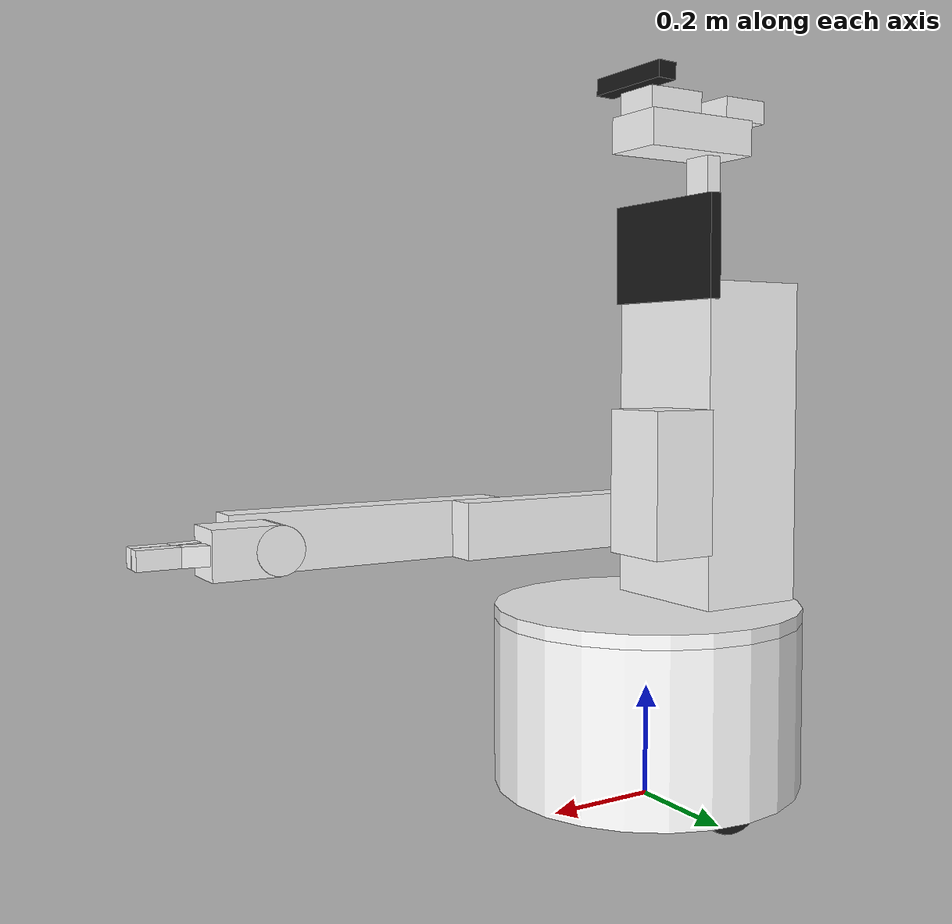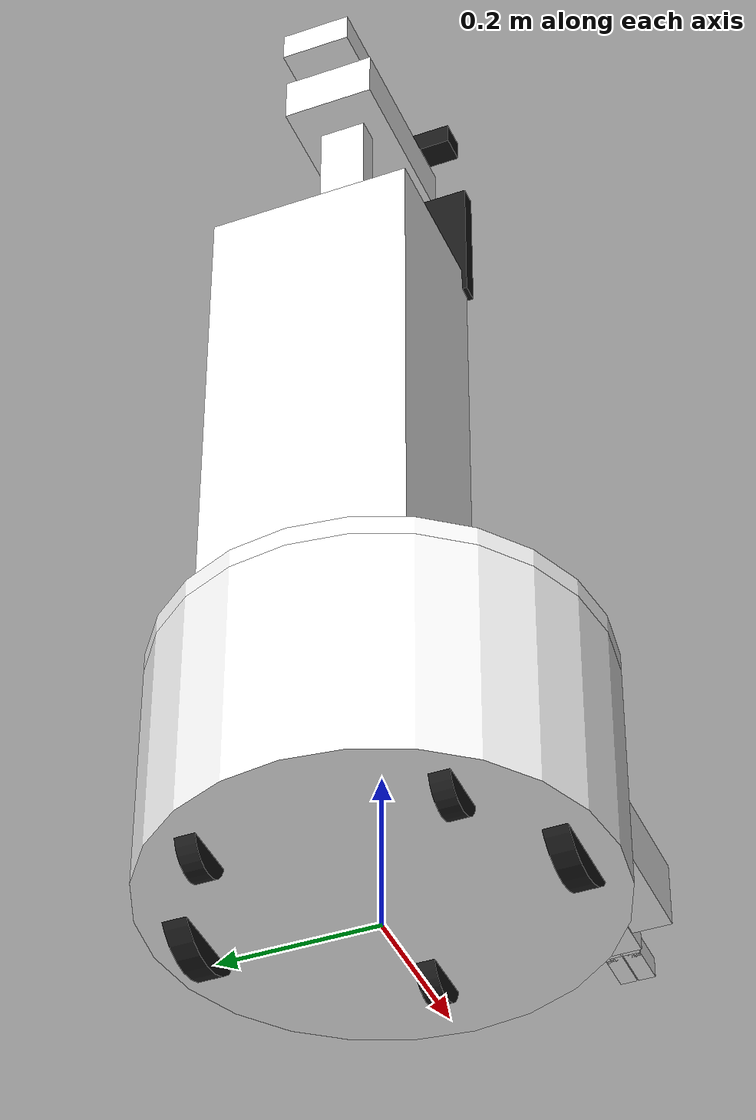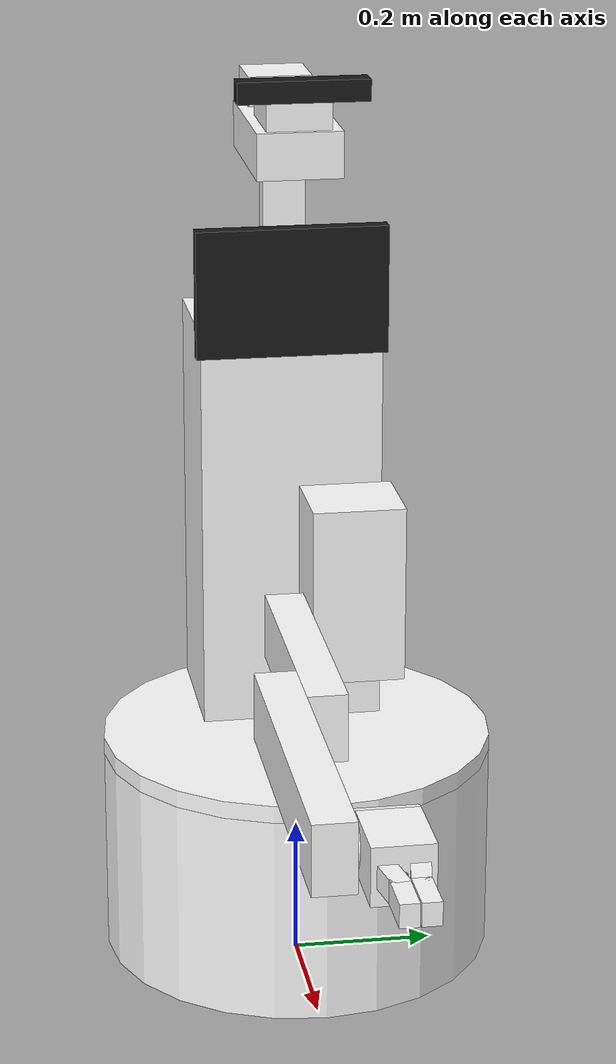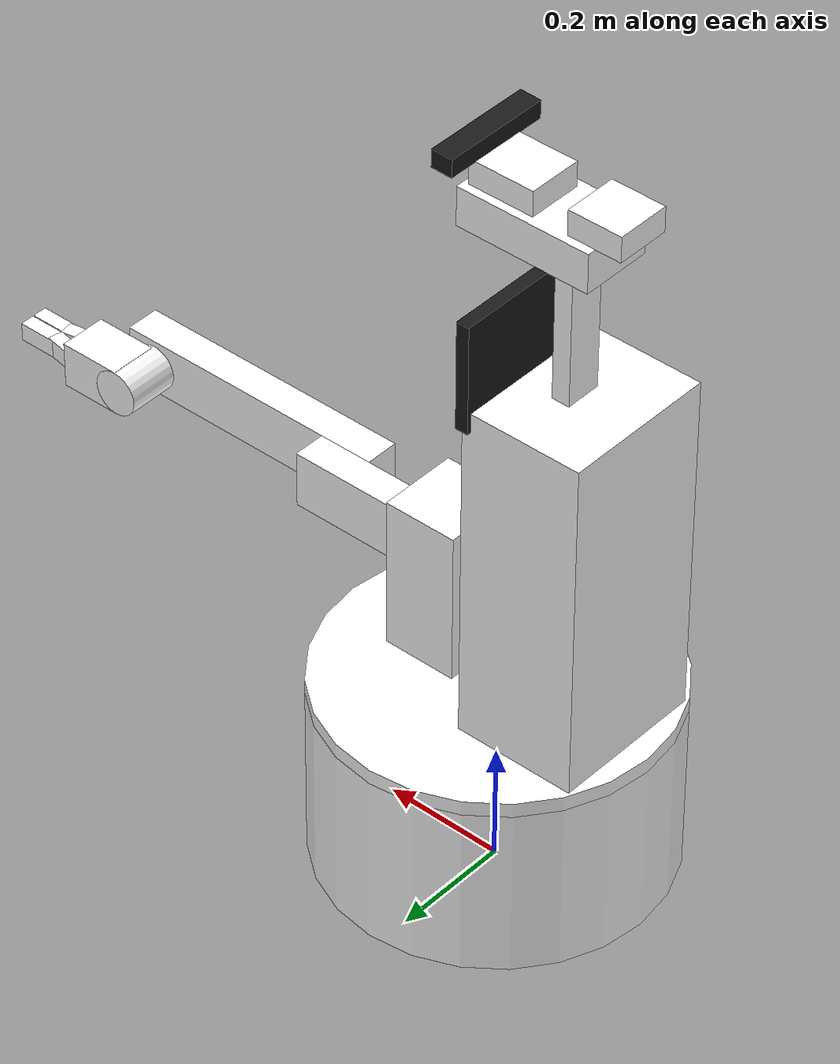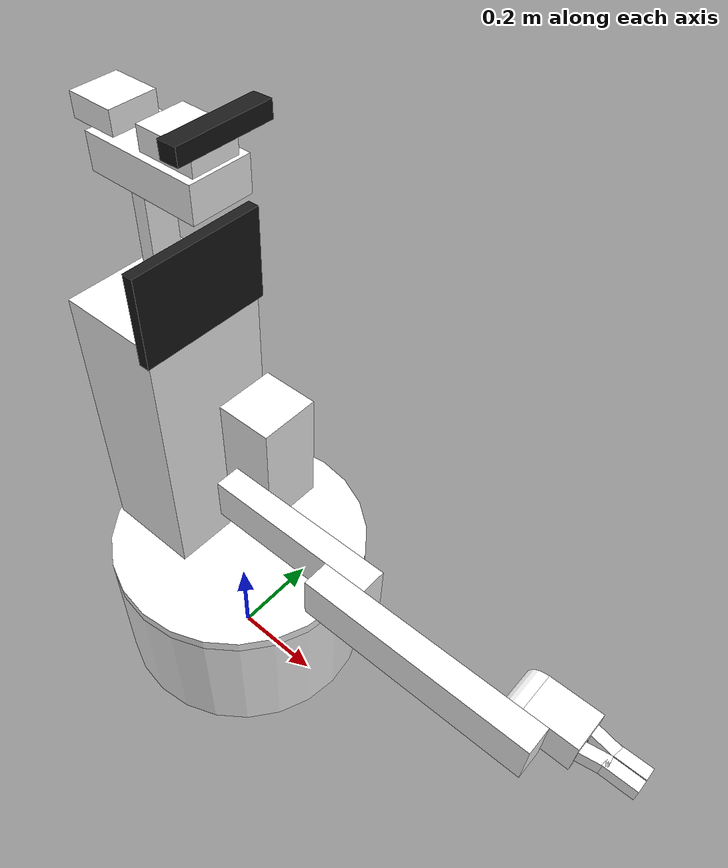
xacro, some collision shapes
<?xml version="1.0" ?>
<robot name="korus_v3" xmlns:xacro="http://www.ros.org/wiki/xacro">
  <xacro:include filename="$(find korus_meta)/resources/urdf/components/diff_drive_base.urdf.xacro"/>
  <xacro:include filename="$(find korus_meta)/resources/urdf/components/upper_body.urdf.xacro"/>
  <xacro:include filename="$(find korus_meta)/resources/urdf/components/arm.urdf.xacro"/>

  <!-- ************************ Base model ************************* -->
  <xacro:diff_drive_base parent="base_footprint" body_mount_link="base_link"/>

  <!-- ************************ Body model ************************* -->
  <xacro:upper_body body_mount_link="base_link" arm_mount_link="torso_lift_link"/>

  <!-- ************************ Arm model ************************* -->
  <xacro:arm arm_mount_link="torso_lift_link"/>
</robot>

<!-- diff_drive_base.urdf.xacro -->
<robot xmlns:xacro="http://www.ros.org/wiki/xacro">
  <xacro:include filename="$(find korus_meta)/resources/urdf/materials.urdf.xacro"/>
  <xacro:include filename="$(find korus_meta)/resources/urdf/hokuyo_lx30_laser.urdf.xacro"/>

  <!-- ************************** Properties ************************** -->
  <xacro:property name="wheel_bias" value="0.450"/>
  <xacro:property name="wheel_radius" value="0.075"/>
  <xacro:property name="caster_wheel_bias" value="0.294"/>
  <xacro:property name="caster_wheel_radius" value="0.0375"/>

  <!-- ************************** Wheel macros ************************** -->
	<xacro:macro name="drive_wheel" params="name parent length radius off_x off_y off_z">
    <joint name="${name}" type="continuous">
      <parent link="${parent}"/>
      <child link="${name}_link"/>
      <origin rpy="0 0 ${pi/2}" xyz="${off_x} ${off_y} ${off_z}"/>
      <limit effort="48.0" velocity="0.5"/>
    </joint>
	  <link name="${name}_link">
	    <visual>
	      <geometry>
	        <cylinder length="${length}" radius="${radius}"/>
	      </geometry>
	      <origin rpy="0 ${pi/2} 0" xyz="0 0 0"/>
	      <material name="black">
	        <color rgba="0.1 0.1 0.1 1"/>
	      </material>
	    </visual>
	  </link>
	</xacro:macro>
	<xacro:macro name="caster_wheel" params="name parent length radius off_x off_y off_z">
    <joint name="${name}_joint" type="fixed">
      <parent link="${parent}"/>
      <child link="${name}_link"/>
      <origin rpy="0 0 ${pi/2}" xyz="${off_x} ${off_y} ${off_z}"/>
    </joint>
    <link name="${name}_link">
      <visual>
        <geometry>
          <cylinder length="${length}" radius="${radius}"/>
        </geometry>
        <origin rpy="0 ${pi/2} 0" xyz="0 0 0"/>
        <material name="black">
          <color rgba="0.1 0.1 0.1 1"/>
        </material>
      </visual>
    </link>
  </xacro:macro>

  <!-- ************************** Differential drive base macro ************************** -->
  <xacro:macro name="diff_drive_base" params="parent body_mount_link">
    <link name="${parent}"/>
		<joint name="base_joint" type="fixed">
		  <parent link="${parent}"/>
		  <child link="${body_mount_link}"/>
		  <origin rpy="0 0 0" xyz="0.0 0.0 0.075"/>
		</joint>
		<link name="${body_mount_link}">
		  <visual>
		    <geometry>
		      <cylinder length="0.299" radius="0.278"/>
		    </geometry>
		    <origin xyz="0.0 0.0 0.1045" rpy="0 0 0"/>
		    <xacro:insert_block name="material_white"/>
		  </visual>
		  <collision>
	      <geometry>
	        <cylinder length="0.299" radius="0.278"/>
	      </geometry>
	      <origin xyz="0.0 0.0 0.1045" rpy="0 0 0"/>
		  </collision>
		</link>
		<xacro:drive_wheel name="wheel_left" parent="${body_mount_link}" length="0.03" radius="${wheel_radius}" off_x="0.0" off_y="${wheel_bias/2}" off_z="0.0"/>
		<xacro:drive_wheel name="wheel_right" parent="${body_mount_link}" length="0.03" radius="${wheel_radius}" off_x="0.0" off_y="-${wheel_bias/2}" off_z="0.0"/>
		<xacro:caster_wheel name="caster_front" parent="${body_mount_link}" length="0.025" radius="${caster_wheel_radius}" off_x="0.160" off_y="0.0" off_z="-0.0375"/>
		<xacro:caster_wheel name="caster_back_left" parent="${body_mount_link}" length="0.025" radius="${caster_wheel_radius}" off_x="-0.160" off_y="${caster_wheel_bias/2}" off_z="-0.0375"/>
		<xacro:caster_wheel name="caster_back_right" parent="${body_mount_link}" length="0.025" radius="${caster_wheel_radius}" off_x="-0.160" off_y="-${caster_wheel_bias/2}" off_z="-0.0375"/>

	  <!-- ************************** Sensors ************************** -->
	  <xacro:hokuyo_lx30_laser name="laser" parent="base" ros_topic="laser_scan"
	                           update_rate="20" min_angle="${-100.94*pi/180}" max_angle="${100.94*pi/180}">
		  <origin xyz="0.210 0.0 0.21785" rpy="0 0 0"/>
	  </xacro:hokuyo_lx30_laser>

	  <joint name="sonar_front_left" type="fixed">
	    <parent link="${body_mount_link}"/>
	    <child link="sonar_front_left_link"/>
	    <origin xyz="0.12411 0.21496 0.09881" rpy="0 ${-20*pi/180} ${60*pi/180}"/>
	  </joint>
	  <link name="sonar_front_left_link"/>

	  <joint name="sonar_front_middle" type="fixed">
	    <parent link="${body_mount_link}"/>
	    <child link="sonar_front_middle_link"/>
	    <origin xyz="0.24822 0.0 0.09881" rpy="0 ${-20*pi/180} 0"/>
	  </joint>
	  <link name="sonar_front_middle_link"/>

	  <joint name="sonar_front_right" type="fixed">
	    <parent link="${body_mount_link}"/>
	    <child link="sonar_front_right_link"/>
	    <origin xyz="0.12411 -0.21496 0.09881" rpy="0 ${-20*pi/180} ${-60*pi/180}"/>
	  </joint>
	  <link name="sonar_front_right_link"/>

	     <joint name="sonar_back_left" type="fixed">
      <parent link="${body_mount_link}"/>
      <child link="sonar_back_left_link"/>
      <origin xyz="-0.12411 0.21496 0.09881" rpy="0 ${-20*pi/180} ${120*pi/180}"/>
    </joint>
    <link name="sonar_back_left_link"/>

    <joint name="sonar_back_middle" type="fixed">
      <parent link="${body_mount_link}"/>
      <child link="sonar_back_middle_link"/>
      <origin xyz="-0.24822 0.0 0.09881" rpy="0 ${-20*pi/180} ${-180*pi/180}"/>
    </joint>
    <link name="sonar_back_middle_link"/>

    <joint name="sonar_back_right" type="fixed">
      <parent link="${body_mount_link}"/>
      <child link="sonar_back_right_link"/>
      <origin xyz="-0.12411 -0.21496 0.09881" rpy="0 ${-20*pi/180} ${-120*pi/180}"/>
    </joint>
    <link name="sonar_back_right_link"/>

    <joint name="gyro" type="fixed">
      <parent link="${body_mount_link}"/>
      <child link="gyro_link"/>
      <origin xyz="0.080 0.165 0.040" rpy="0 0 0"/>
    </joint>
    <link name="gyro_link"/>

  </xacro:macro>
</robot>

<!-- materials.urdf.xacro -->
<robot xmlns:xacro="http://www.ros.org/wiki/xacro" name="materials">

	<!-- ************************ Properties ************************** -->
	<xacro:property name="pi" value="3.1415926535897931" />
	<xacro:property name="rad" value="0.0174532925199" /> <!-- pi/180 -->
	<xacro:property name="material_white">
	  <material name="white">
	    <color rgba="1 1 1 1"/>
	  </material>
	</xacro:property>
	<xacro:property name="material_orange">
	  <material name="orange">
	    <color rgba="1.0 0.7 0.0 1"/>
	  </material>
	</xacro:property>
	<xacro:property name="material_red">
	  <material name="red">
	    <color rgba="1.0 0.0 0.0 1"/>
	  </material>
	</xacro:property>
	<xacro:property name="material_grey_blue">
	  <material name="grey_blue">
	    <color rgba="0.4 0.4 1.0 1"/>
	  </material>
	</xacro:property>
	<xacro:property name="material_blue">
	  <material name="blue">
	    <color rgba="0.0 0.0 1.0 1"/>
	  </material>
	</xacro:property>
	<xacro:property name="material_green">
	  <material name="green">
	    <color rgba="0 .8 0 1"/>
	  </material>
	</xacro:property>
	<xacro:property name="material_grey">
	  <material name="grey">
	    <color rgba="0.7 0.7 0.7 1.0"/>
	  </material>
	</xacro:property>
	<xacro:property name="material_black">
	  <material name="black">
	    <color rgba="0.1 0.1 0.1 1"/>
	  </material>
	</xacro:property>
</robot>

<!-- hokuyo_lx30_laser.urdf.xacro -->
<!--  Move this to a ycs_device_descriptions package -->

<robot xmlns:sensor="http://playerstage.sourceforge.net/gazebo/xmlschema/#sensor"
       xmlns:controller="http://playerstage.sourceforge.net/gazebo/xmlschema/#controller"
       xmlns:interface="http://playerstage.sourceforge.net/gazebo/xmlschema/#interface"
       xmlns:xacro="http://ros.org/wiki/xacro">

  <include filename="$(find korus_meta)/resources/urdf/hokuyo_lx30_laser.gazebo.xacro" />

  <xacro:macro name="hokuyo_lx30_laser" params="name parent *origin ros_topic update_rate min_angle max_angle">
    <joint name="${name}_joint" type="fixed">
      <axis xyz="0 1 0" />
      <insert_block name="origin" />
      <parent link="${parent}_link"/>
      <child link="${name}_link"/>
    </joint>
    <link name="${name}_link" type="laser">
      <inertial>
        <mass value="0.001" />
        <origin xyz="0 0 0" rpy="0 0 0" />
        <inertia ixx="0.0001" ixy="0" ixz="0" iyy="0.000001" iyz="0" izz="0.0001" />
      </inertial>
      <visual>
        <geometry>
           <box size="0.050 0.050 0.0703" />
   	    </geometry>
        <origin xyz="0.0 0.0 -0.023" rpy="0 0 0"/>
        <material name="black">
          <color rgba="0.1 0.1 0.1 1"/>
        </material>
      </visual>
      <collision>
        <geometry>
           <box size="0.050 0.050 0.0703" />
        </geometry>
        <origin xyz="0.0 0.0 -0.023" rpy="0 0 0"/>
      </collision>
    </link>
    <xacro:hokuyo_lx30_laser_gazebo name="${name}" ros_topic="${ros_topic}" update_rate="${update_rate}" min_angle="${min_angle}" max_angle="${max_angle}" />
  </xacro:macro>
</robot>

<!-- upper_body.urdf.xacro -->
<robot xmlns:xacro="http://www.ros.org/wiki/xacro">
  <xacro:include filename="$(find korus_meta)/resources/urdf/materials.urdf.xacro"/>

  <!-- ************************** Robot body macro ************************** -->
  <xacro:macro name="upper_body" params="body_mount_link arm_mount_link">

    <!-- ************************** Torso *************************** -->
	  <joint name="torso_turn" type="revolute">
	    <parent link="${body_mount_link}"/>
	    <child link="torso_link"/>
	    <origin rpy="0 0 0" xyz="0.0 0.0 0.2665"/>
	    <axis xyz="0 0 1"/>
	    <limit effort="205.0" lower="-${186*rad}" upper="${160*rad}" velocity="${88.7*rad}"/>
	  </joint>
	  <link name="torso_link">
	    <visual>
	       <geometry>
	        <cylinder length="0.025" radius="0.278"/>
	      </geometry>
	      <origin xyz="0.0 0.0 0.0" rpy="0 0 0"/>
	      <xacro:insert_block name="material_white" />
	    </visual>
      <collision>
         <geometry>
          <cylinder length="0.025" radius="0.278"/>
        </geometry>
        <origin xyz="0.0 0.0 0.0" rpy="0 0 0"/>
        <xacro:insert_block name="material_white" />
      </collision>
	  </link>
	  <joint name="turret" type="fixed">
	    <parent link="torso_link"/>
	    <child link="turret_link"/>
	    <origin xyz="-0.13786 0.0 0.0" rpy="0 0 0"/>
	  </joint>
	  <link name="turret_link">
	    <visual>
	      <geometry>
           <box size="0.204 0.25746 0.57888" />
	      </geometry>
        <origin xyz="0.0 0.0 0.30194" rpy="0.0 0.0 0.0"/>
	      <xacro:insert_block name="material_white" />
	    </visual>
      <collision>
        <geometry>
           <box size="0.204 0.25746 0.57888" />
        </geometry>
        <origin xyz="0.0 0.0 0.30194" rpy="0.0 0.0 0.0"/>
       </collision>
	  </link>

	  <joint name="torso_lift_offset" type="fixed">
	    <parent link="turret_link"/>
	    <child link="torso_lift_offset_link"/>
	    <origin xyz="0.10361 0.010 0.170" rpy="0 0 0"/>
	  </joint>
	  <link name="torso_lift_offset_link"/>

	  <joint name="torso_lift" type="prismatic">
	    <parent link="torso_lift_offset_link"/>
	    <child link="${arm_mount_link}"/>
	    <origin xyz="0 0 0" rpy="0 0 0"/>
	    <axis xyz="0 0 1"/>
	    <limit effort="26.0" lower="-0.002" upper="0.1750" velocity="0.038"/>
	  </joint>
	  <link name="${arm_mount_link}"/>

    <!-- ************************** Neck with tablet ************************** -->
	  <joint name="neck" type="fixed">
	    <parent link="turret_link"/>
	    <child link="neck_link"/>
	    <origin rpy="0 0 0" xyz="0.0125 0.0 0.59138"/>
	  </joint>
	  <link name="neck_link">
	    <visual>
	      <geometry>
          <box size="0.030 0.060 0.23262"/>
	      </geometry>
	      <origin xyz="0.0 0.0 0.11631" rpy="0 0 0"/>
	      <xacro:insert_block name="material_white"/>
	    </visual>
      <collision>
        <geometry>
          <box size="0.030 0.060 0.23262"/>
        </geometry>
        <origin xyz="0.0 0.0 0.11631" rpy="0 0 0"/>
      </collision>
	  </link>

    <joint name="tablet" type="fixed">
      <parent link="neck_link"/>
      <child link="tablet_link"/>
      <origin rpy="0 0 0" xyz="0.085 0.0 0.05812"/>
    </joint>
    <link name="tablet_link">
      <visual>
        <geometry>
          <box size="0.022 0.270 0.1812"/>
        </geometry>
        <origin xyz="0.0 0.0 0.0" rpy="0.0 0.0 0.0"/>
        <xacro:insert_block name="material_black" />
      </visual>
      <collision>
        <geometry>
          <box size="0.022 0.270 0.1812"/>
        </geometry>
        <origin xyz="0.0 0.0 0.0" rpy="0.0 0.0 0.0"/>
      </collision>
    </link>

	  <!-- ************************** Head with ASUS Xtion Pro Live and Stargazer ************************** -->
    <joint name="head" type="fixed">
      <parent link="neck_link"/>
      <child link="head_link"/>
      <origin xyz="0.0 0.0 0.23262" rpy="0 0 0"/>
    </joint>
    <link name="head_link">
      <visual>
        <geometry>
          <box size="0.227 0.11872 0.0645" />
        </geometry>
        <origin xyz="0.0495 0.0 0.03225" rpy="0.0 0.0 0.0"/>
        <xacro:insert_block name="material_white" />
      </visual>
      <collision>
        <geometry>
          <box size="0.227 0.11872 0.0645" />
        </geometry>
        <origin xyz="0.0495 0.0 0.03225" rpy="0.0 0.0 0.0"/>
      </collision>
    </link>

    <joint name="stargazer" type="fixed">
      <parent link="head_link"/>
      <child link="stargazer_link"/>
      <origin xyz="-0.040 0.0 0.1025" rpy="0 0 ${pi}"/>
    </joint>
    <link name="stargazer_link">
      <visual>
        <geometry>
          <box size="0.09065 0.090 0.0417" />
        </geometry>
        <origin xyz="0.02133 0.0 -0.0175" rpy="0.0 0.0 0.0"/>
        <xacro:insert_block name="material_white" />
      </visual>
      <collision>
        <geometry>
          <box size="0.09065 0.090 0.0417" />
        </geometry>
        <origin xyz="0.02133 0.0 -0.0175" rpy="0.0 0.0 0.0"/>
      </collision>
    </link>

    <joint name="head_pan" type="revolute">
      <parent link="head_link"/>
      <child link="head_pan_link"/>
      <origin xyz="0.133 0.0 0.0645" rpy="0 0 0"/>
      <axis xyz="0 0 1"/>
      <limit effort="9.0" lower="${-137*rad}" upper="${137*rad}" velocity="${476*rad}"/>
    </joint>
    <link name="head_pan_link">
      <visual>
        <geometry>
          <box size="0.1122 0.090 0.0417"/>
        </geometry>
        <origin xyz="-0.0339 0.0 0.02085" rpy="0.0 0.0 0.0"/>
        <xacro:insert_block name="material_white"/>
      </visual>
      <collision>
        <geometry>
          <box size="0.1122 0.090 0.0417"/>
        </geometry>
        <origin xyz="-0.0339 0.0 0.02085" rpy="0.0 0.0 0.0"/>
      </collision>
    </link>

    <joint name="head_tilt" type="revolute">
      <parent link="head_pan_link"/>
      <child link="head_tilt_link"/>
      <origin xyz="0.028 0.0 0.0275" rpy="${pi/2} 0 0"/> <!-- x original 0.013 -->
      <axis xyz="0 0 1"/>
      <limit effort="9.0" lower="${-92*rad}" upper="${32*rad}" velocity="${476*rad}"/>
    </joint>
    <link name="head_tilt_link"/>

    <joint name="head_tilt_fixed" type="fixed">
      <parent link="head_link"/>
      <child link="head_tilt_fixed_link"/>
      <origin xyz="0.146 0.0 0.092" rpy="${pi/2} 0 0"/>
    </joint>
    <link name="head_tilt_fixed_link"/>

    <joint name="sensor_3d" type="fixed">
      <parent link="head_tilt_link"/>
      <child link="sensor_3d_link"/>
      <!-- adds 2 deg to yaw, because the xtion is mounted on its surface which is inclined (approx. 2 deg) -->
      <origin xyz="0.0 0.0 0.0" rpy="${-pi/2} 0 0.035"/>
    </joint>
    <link name="sensor_3d_link">
      <visual>
        <origin xyz="0.0075 0.0 0.0315" rpy="${pi/2} 0 ${pi/2}" />
        <geometry>
           <!-- Thank you IHeartRobotics for the Xtion mesh! -->
           <mesh filename="package://korus_meta/resources/meshes/asus_xtion_pro_live.dae" scale="0.001 0.001 0.001"/>
        </geometry>
        <xacro:insert_block name="material_black"/>
      </visual>
      <collision>
        <origin xyz="0.0 0.0032 0.0291" rpy="0 0 0" />
        <geometry>
          <box size="0.036 0.180 0.0298"/>
        </geometry>
      </collision>
    </link>

    <joint name="sensor_3d_depth_joint" type="fixed">
      <origin xyz="0.01 0.0485 0.0315" rpy="0 0.0 0" />
      <parent link="sensor_3d_link" />
      <child link="sensor_3d_depth_frame" />
    </joint>
    <link name="sensor_3d_depth_frame">
      <inertial>
        <mass value="0.01" />
        <origin xyz="0 0 0" />
        <inertia ixx="0.001" ixy="0.0" ixz="0.0"
                 iyy="0.001" iyz="0.0" izz="0.001" />
      </inertial>
    </link>

    <joint name="sensor_3d_depth_optical_joint" type="fixed">
      <origin xyz="0 0 0" rpy="${-pi/2} 0 ${-pi/2}" />
      <parent link="sensor_3d_depth_frame" />
      <child link="sensor_3d_depth_optical_frame" />
    </joint>
    <link name="sensor_3d_depth_optical_frame">
      <inertial>
        <mass value="0.001" />
        <origin xyz="0 0 0" />
        <inertia ixx="0.0001" ixy="0.0" ixz="0.0"
                 iyy="0.0001" iyz="0.0" izz="0.0001" />
      </inertial>
    </link>

    <joint name="sensor_3d_rgb_joint" type="fixed">
      <origin xyz="0.01 0.023 0.0315" rpy="0 -0.017 0" />
      <parent link="sensor_3d_link" />
      <child link="sensor_3d_rgb_frame" />
    </joint>
    <link name="sensor_3d_rgb_frame">
      <inertial>
        <mass value="0.001" />
        <origin xyz="0 0 0" />
        <inertia ixx="0.0001" ixy="0.0" ixz="0.0"
                 iyy="0.0001" iyz="0.0" izz="0.0001" />
      </inertial>
    </link>

    <joint name="sensor_3d_rgb_optical_joint" type="fixed">
      <origin xyz="0 0 0" rpy="${-pi/2} 0 ${-pi/2}" />
      <parent link="sensor_3d_rgb_frame" />
      <child link="sensor_3d_rgb_optical_frame" />
    </joint>
    <link name="sensor_3d_rgb_optical_frame">
      <inertial>
        <mass value="0.001" />
        <origin xyz="0 0 0" />
        <inertia ixx="0.0001" ixy="0.0" ixz="0.0"
                 iyy="0.0001" iyz="0.0" izz="0.0001" />
      </inertial>
    </link>

  </xacro:macro>
</robot>

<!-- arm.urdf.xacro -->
<robot xmlns:xacro="http://www.ros.org/wiki/xacro">
  <xacro:include filename="$(find korus_meta)/resources/urdf/materials.urdf.xacro"/>

  <!-- ************************ Arm macro ************************* -->
  <xacro:macro name="arm" params="arm_mount_link">
    <joint name="arm_mount" type="fixed">
      <parent link="${arm_mount_link}"/>
      <child link="shoulder_link"/>
      <origin xyz="0.08225 0.0 0.0" rpy="${pi/2} 0.0 0.0"/>
    </joint>
    <link name="shoulder_link">
      <visual>
        <geometry>
          <box size="0.122 0.254 0.131"/>
        </geometry>
        <origin xyz="-0.020 0.070 -0.0655" rpy="0 0 0"/>
        <xacro:insert_block name="material_white"/>
      </visual>
      <collision>
        <geometry>
          <box size="0.122 0.254 0.131"/>
        </geometry>
        <origin xyz="-0.020 0.070 -0.0655" rpy="0 0 0"/>
       </collision>
    </link>

	  <joint name="shoulder" type="revolute">
	    <parent link="shoulder_link"/>
	    <child link="upper_arm_link"/>
      <origin xyz="0 0 0" rpy="0 0 0"/>
	    <axis xyz="0 0 1"/>
	    <limit effort="250.0" lower="${-70*rad}" upper="${92*rad}" velocity="${73*rad}"/>
	  </joint>
	  <link name="upper_arm_link">
	    <visual>
	      <geometry>
	        <box size="0.378 0.095 0.055"/>
	      </geometry>
	      <origin xyz="0.1415 0.0 0.0275" rpy="0 0 0"/>
	      <xacro:insert_block name="material_white" />
	    </visual>
      <collision>
        <geometry>
          <box size="0.378 0.095 0.055"/>
        </geometry>
        <origin xyz="0.1415 0.0 0.0275" rpy="0 0 0"/>
       </collision>
	  </link>

	  <joint name="elbow" type="revolute">
	    <parent link="upper_arm_link"/>
	    <child link="lower_arm_link"/>
	    <origin xyz="0.283 0.0 0.055" rpy="0 0 0"/>
	    <axis xyz="0 0 1"/>
	    <limit effort="200.0" lower="${-200*rad}" upper="${92*rad}" velocity="${91*rad}"/>
	  </joint>
	  <link name="lower_arm_link">
	    <visual>
	      <geometry>
	        <box size="0.477 0.095 0.057"/>
	      </geometry>
	      <origin xyz="0.19426 0.00 0.0285" rpy="0 0 0"/>
	      <xacro:insert_block name="material_white" />
	    </visual>
      <collision>
        <geometry>
          <box size="0.477 0.095 0.057"/>
        </geometry>
        <origin xyz="0.19426 0.00 0.0285" rpy="0 0 0"/>
      </collision>
	  </link>

	  <joint name="wrist" type="revolute">
	    <parent link="lower_arm_link"/>
	    <child link="wrist_link"/>
	    <origin xyz="0.382 0.0 0.0" rpy="0 0 0"/>
	    <axis xyz="0 0 1"/>
	    <limit effort="51.0" lower="${-100*rad}" upper="${100*rad}" velocity="${72.5*rad}"/>
	  </joint>
	  <link name="wrist_link">
	    <visual>
	      <geometry>
          <cylinder length="0.0854" radius="0.038"/>
	      </geometry>
	      <origin xyz="0.0 0.0 -0.0427" rpy="0 0 0"/>
	      <xacro:insert_block name="material_white"/>
	    </visual>
      <collision>
        <geometry>
          <cylinder length="0.0854" radius="0.038"/>
        </geometry>
        <origin xyz="0.0 0.0 -0.0427" rpy="0 0 0"/>
      </collision>
	  </link>

  	<!--   Endeffector (gripper)  -->
	  <joint name="palm" type="fixed">
	    <parent link="wrist_link"/>
	    <child link="palm_link"/>
	    <origin xyz="0.0 0.0 -0.045" rpy="0 0 0"/>
	  </joint>
	  <link name="palm_link">
	    <visual>
	      <geometry>
	        <box size="0.1044 0.077 0.0804"/>
	      </geometry>
	      <origin xyz="0.0522 0.0 0.0" rpy="0 0 0"/>
        <xacro:insert_block name="material_white"/>
      </visual>
      <collision>
        <geometry>
          <box size="0.1044 0.077 0.0804"/>
        </geometry>
        <origin xyz="0.0522 0.0 0.0" rpy="0 0 0"/>
      </collision>
	  </link>

    <joint name="gripper_center" type="fixed">
      <parent link="palm_link"/>
      <child link="gripper_center_link"/>
      <origin xyz="0.15 0.0 0.0" rpy="0 0 0"/>
    </joint>
    <link name="gripper_center_link"/>

	  <joint name="gripper" type="revolute">
	    <parent link="palm_link"/>
	    <child link="gripper_link"/>
	    <origin xyz="0.08 0.0 0.0" rpy="${-pi/2} 0 0"/>
	    <axis xyz="0 0 1"/>
	    <limit effort="33.4" lower="${-2*rad}" upper="${78*rad}" velocity="${80.8*rad}"/>
	  </joint>
	  <link name="gripper_link"/>

    <joint name="finger_left_knuckle_1" type="revolute">
      <parent link="palm_link"/>
      <child link="finger_left_knuckle_1_link"/>
      <origin xyz="0.0925 0.0 -0.022" rpy="${pi/2} ${-10*rad} 0"/>
      <axis xyz="0 0 1"/>
      <limit effort="33.4" lower="${-78*rad}" upper="${2*rad}" velocity="${80.8*rad}"/>
    </joint>
	  <link name="finger_left_knuckle_1_link">
      <visual>
	      <geometry>
	        <box size="0.0595 0.0247 0.0306"/>
	      </geometry>
	      <origin xyz="0.02975 0.0 0.0" rpy="0 0 0"/>
	      <xacro:insert_block name="material_white"/>
	    </visual>
      <collision>
        <geometry>
          <box size="0.0595 0.0247 0.0306"/>
        </geometry>
        <origin xyz="0.02975 0.0 0.0" rpy="0 0 0"/>
      </collision>
	  </link>
    <joint name="finger_left_knuckle_2" type="revolute">
      <parent link="finger_left_knuckle_1_link"/>
      <child link="finger_left_knuckle_2_link"/>
      <origin xyz="0.051 0.0 0.0" rpy="0 0 ${-10*rad}"/>
      <axis xyz="0 0 1"/>
      <limit effort="33.4" lower="${-2*rad}" upper="${78*rad}" velocity="${80.8*rad}"/>
    </joint>
    <link name="finger_left_knuckle_2_link">
      <visual>
        <geometry>
          <box size="0.065 0.0247 0.0306"/>
        </geometry>
        <origin xyz="0.0325 0.0 0.0" rpy="0 0 0"/>
        <xacro:insert_block name="material_white"/>
      </visual>
      <collision>
        <geometry>
          <box size="0.065 0.0247 0.0306"/>
        </geometry>
        <origin xyz="0.0325 0.0 0.0" rpy="0 0 0"/>
      </collision>
    </link>
    <joint name="finger_left_tip" type="fixed">
      <parent link="finger_left_knuckle_2_link"/>
      <child link="finger_left_tip_link"/>
      <origin xyz="0.065 0.0 0.0" rpy="0 0 0"/>
    </joint>
    <link name="finger_left_tip_link"/>

    <joint name="finger_right_knuckle_1" type="revolute">
      <parent link="palm_link"/>
      <child link="finger_right_knuckle_1_link"/>
      <origin xyz="0.0925 0.0 0.022" rpy="${-pi/2} ${10*rad} 0.0"/>
      <axis xyz="0 0 1"/>
      <limit effort="33.4" lower="${-78*rad}" upper="${2*rad}" velocity="${80.8*rad}"/>
    </joint>
    <link name="finger_right_knuckle_1_link">
      <visual>
        <geometry>
          <box size="0.0595 0.0247 0.0306"/>
        </geometry>
        <origin xyz="0.02975 0.0 0.0" rpy="0 0 0"/>
        <xacro:insert_block name="material_white"/>
      </visual>
      <collision>
        <geometry>
          <box size="0.0595 0.0247 0.0306"/>
        </geometry>
        <origin xyz="0.02975 0.0 0.0" rpy="0 0 0"/>
      </collision>
    </link>
    <joint name="finger_right_knuckle_2" type="revolute">
      <parent link="finger_right_knuckle_1_link"/>
      <child link="finger_right_knuckle_2_link"/>
      <origin xyz="0.051 0.0 0.0" rpy="0 0 ${-10*rad}"/>
      <axis xyz="0 0 1"/>
      <limit effort="33.4" lower="${-2*rad}" upper="${78*rad}" velocity="${80.8*rad}"/>
    </joint>
    <link name="finger_right_knuckle_2_link">
      <visual>
        <geometry>
          <box size="0.065 0.0247 0.0306"/>
        </geometry>
        <origin xyz="0.0325 0.0 0.0" rpy="0 0 0"/>
        <xacro:insert_block name="material_white"/>
      </visual>
      <collision>
        <geometry>
          <box size="0.065 0.0247 0.0306"/>
        </geometry>
        <origin xyz="0.0325 0.0 0.0" rpy="0 0 0"/>
      </collision>
    </link>
    <joint name="finger_right_tip" type="fixed">
      <parent link="finger_right_knuckle_2_link"/>
      <child link="finger_right_tip_link"/>
      <origin xyz="0.065 0.0 0.0" rpy="0 0 0"/>
    </joint>
    <link name="finger_right_tip_link"/>

    <joint name="gripper_camera" type="fixed">
      <parent link="palm_link"/>
      <child link="gripper_camera_link"/>
      <origin xyz="0.10015 0 0" rpy="0.0 ${pi/2} 0.0"/>
    </joint>
    <link name="gripper_camera_link">
      <visual>
        <geometry>
          <cylinder length="0.01" radius="0.005"/>
        </geometry>
        <origin xyz="0.0 0.0 0.0" rpy="0 0 0"/>
        <xacro:insert_block name="material_black"/>
      </visual>
      <collision>
        <geometry>
          <cylinder length="0.01" radius="0.005"/>
        </geometry>
        <origin xyz="0.0 0.0 0.0" rpy="0 0 0"/>
        <xacro:insert_block name="material_black"/>
      </collision>
    </link>
  </xacro:macro>
</robot>
